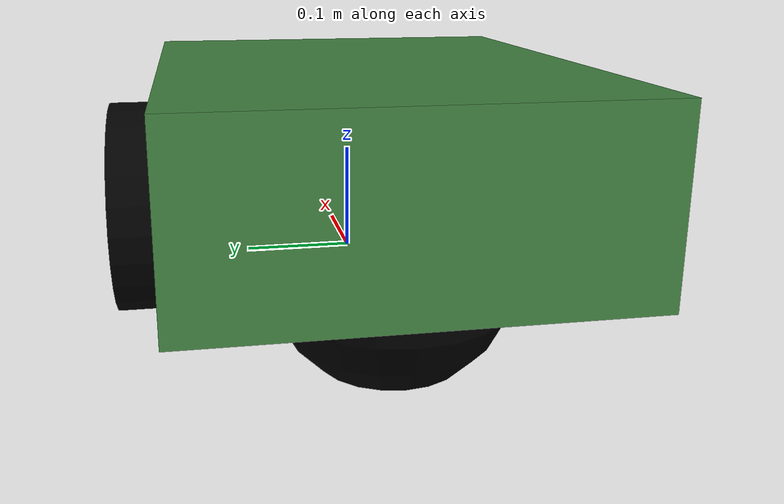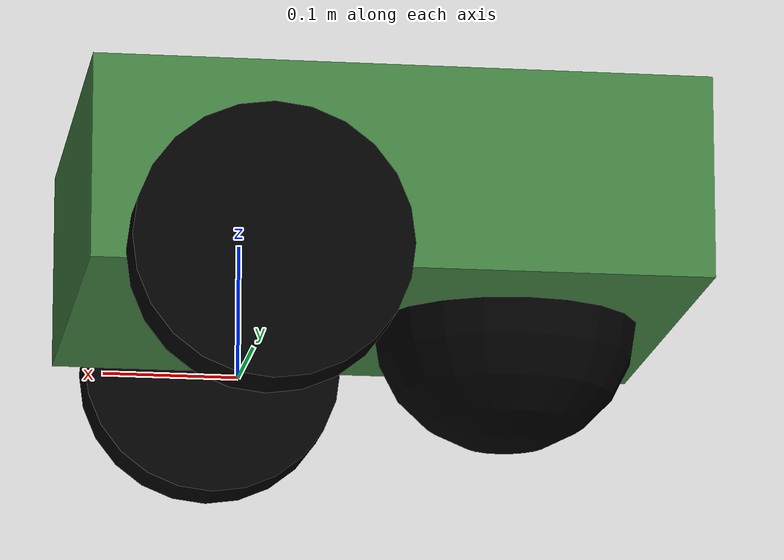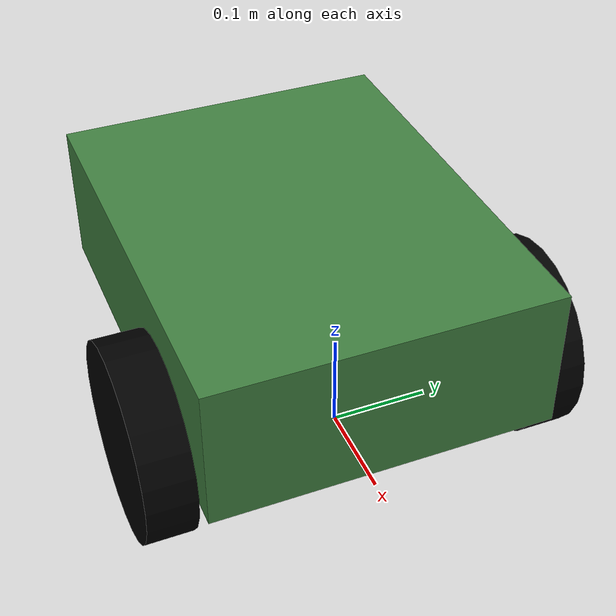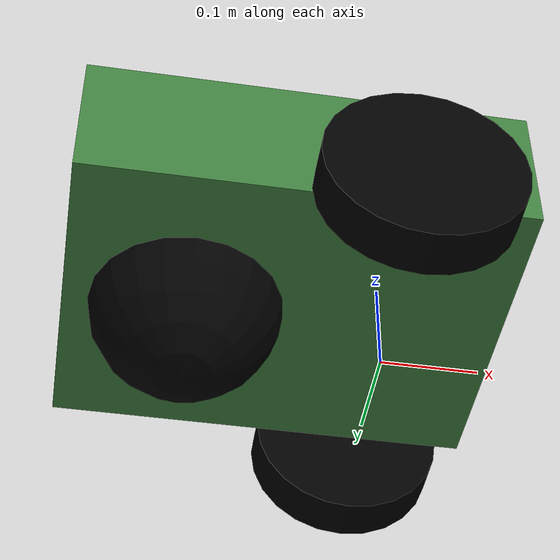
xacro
<?xml version="1.0"?>

<robot name="differential_drive_robot" xmlns:xacro="http://www.ros.org/wiki/xacro">

    <xacro:include filename="$(find myrobot_description)/urdf/include/inertial.xacro" />

    <!-- Robot Parameters -->
    <xacro:property name="body_length" value="0.45"/>
    <xacro:property name="body_width" value="0.35"/>
    <xacro:property name="body_height" value="0.15"/>
    <xacro:property name="body_offset_x" value="-0.1"/>
    <xacro:property name="body_offset_y" value="0.0"/>
    <xacro:property name="body_offset_z" value="0.02"/>
    <xacro:property name="body_density" value="7850.0"/> <!-- Steel -->
    <xacro:property name="body_mass" value="${body_density * body_length * body_height * body_width}"/>

    <xacro:property name="wheel_radius" value="0.1"/>
    <xacro:property name="wheel_width" value="0.05"/>
    <xacro:property name="wheel_separation" value="${body_width + wheel_width}"/>
    <xacro:property name="wheel_offset" value="${body_length/2 - wheel_radius}"/>
    <xacro:property name="wheel_density" value="900"/> <!-- Ruber -->
    <xacro:property name="wheel_mass" value="${wheel_density * pi * wheel_radius * wheel_radius * wheel_width}"/>

    <xacro:property name="caster_radius" value="0.1"/>
    <xacro:property name="caster_offset" value="-0.2"/>
    <xacro:property name="caster_density" value="0.1"/>
    <xacro:property name="caster_mass" value="${caster_density * 4.0/3.0 * pi * caster_radius * caster_radius * caster_radius}"/>
    <xacro:property name="caster_inertia_x" value="${2.0/5.0 * caster_mass * caster_radius * caster_radius}"/>
    <xacro:property name="caster_inertia_y" value="${2.0/5.0 * caster_mass * caster_radius * caster_radius}"/>
    <xacro:property name="caster_inertia_z" value="${2.0/5.0 * caster_mass * caster_radius * caster_radius}"/>

    <!-- Control Parameters -->
    <xacro:property name="max_linear_acceleration" value="10"/>

    <!-- Body Link -->
    <link name="base_link">
        <visual>
            <origin xyz="${body_offset_x} ${body_offset_y} ${body_offset_z}" rpy="0 0 0"/>
            <geometry>
                <box size="${body_length} ${body_width} ${body_height}"/>
            </geometry>
            <material name="body_material">
                <color rgba="0.25 0.5 0.25 1.0"/>
            </material>
        </visual>
        <collision>
            <origin xyz="${body_offset_x} ${body_offset_y} ${body_offset_z}" rpy="0 0 0"/>
            <geometry>
                <box size="${body_length} ${body_width} ${body_height}"/>
            </geometry>
        </collision>
        <xacro:box_inertial_with_origin  x="${body_length}" y="${body_width}" z="${body_height}" mass="${body_mass}">
            <origin xyz="${body_offset_x} ${body_offset_y} ${body_offset_z}" rpy="0 0 0" />
        </xacro:box_inertial_with_origin>
    </link>

    <!-- Left Wheel -->
    <link name="left_wheel_link">
        <visual>
            <origin xyz="0 0 0" rpy="${pi/2} 0 0"/>
            <geometry>
                <cylinder radius="${wheel_radius}" length="${wheel_width}"/>
            </geometry>
            <material name="wheel_material">
                <color rgba="0 0 0 1.0"/>
            </material>
        </visual>
        <collision>
            <origin xyz="0 0 0" rpy="${pi/2} 0 0"/>
            <geometry>
                <cylinder radius="${wheel_radius}" length="${wheel_width}"/>
            </geometry>
        </collision>
        <xacro:cylinder_inertial_with_origin radius="${wheel_radius}" length="${wheel_width}" mass="${wheel_mass}">
            <origin xyz="0 0 0" rpy="0 0 0" />
        </xacro:cylinder_inertial_with_origin>
    </link>

    <!-- Right Wheel -->
    <link name="right_wheel_link">
        <visual>
            <origin xyz="0 0 0" rpy="${pi/2} 0 0"/>
            <geometry>
                <cylinder radius="${wheel_radius}" length="${wheel_width}"/>
            </geometry>
            <material name="wheel_material">
                <color rgba="0 0 0 1.0"/>
            </material>
        </visual>
        <collision>
            <origin xyz="0 0 0" rpy="${pi/2} 0 0"/>
            <geometry>
                <cylinder radius="${wheel_radius}" length="${wheel_width}"/>
            </geometry>
        </collision>
        <xacro:cylinder_inertial_with_origin radius="${wheel_radius}" length="${wheel_width}" mass="${wheel_mass}">
            <origin xyz="0 0 0" rpy="${pi/2} 0 0" />
        </xacro:cylinder_inertial_with_origin>
    </link>

    <!-- Caster Wheel -->
    <link name="caster_link">
        <visual>
            <origin xyz="0 0 0" rpy="0 0 0"/>
            <geometry>
                <sphere radius="${caster_radius}"/>
            </geometry>
            <material name="caster_material">
                <color rgba="0 0 0 1.0"/>
            </material>
        </visual>
        <collision>
            <origin xyz="0 0 0" rpy="0 0 0"/>
            <geometry>
                <sphere radius="${caster_radius}"/>
            </geometry>
        </collision>
        <xacro:sphere_inertial_with_origin radius="${caster_radius}" mass="${caster_mass}">
            <origin xyz="0 0 0" rpy="0 0 0" />
        </xacro:sphere_inertial_with_origin>
    </link>

    <!--  Base footprint -->
    <link name="base_footprint"/>

    <!-- Base footprint joint -->
    <joint name="base_footprint_joint" type="fixed">
        <parent link="base_footprint"/>
        <child link="base_link"/>
        <origin xyz="0 0 ${wheel_radius}" rpy="0 0 0"/>
    </joint>

    <!-- Left wheel joint -->
    <joint name="left_wheel_joint" type="continuous">
        <origin xyz="0 ${wheel_separation/2} -${wheel_radius/2}" rpy="0 0 0"/>
        <parent link="base_link"/>
        <child link="left_wheel_link"/>
        <axis xyz="0 1 0"/>
        <limit effort="100" velocity="10.0"/>
    </joint>

    <!-- Right wheel joint -->
    <joint name="right_wheel_joint" type="continuous">
        <origin xyz="0 ${-wheel_separation/2} -${wheel_radius/2}" rpy="0 0 0"/>
        <parent link="base_link"/>
        <child link="right_wheel_link"/>
        <axis xyz="0 1 0"/>
        <limit effort="100" velocity="10.0"/>
    </joint>

    <!-- Caster joint -->
    <joint name="caster_joint" type="fixed">
        <origin xyz="${caster_offset} 0 -${caster_radius/2}" rpy="0 0 0"/>
        <parent link="base_link"/>
        <child link="caster_link"/>
    </joint>

    <!-- Gazebo Parameters -->
    <gazebo reference="base_link">
        <mu1>1.0</mu1>
        <mu2>1.0</mu2>
    </gazebo>

    <gazebo reference="right_wheel_link">
        <mu1>1.0</mu1>
        <mu2>1.0</mu2>
    </gazebo>

    <gazebo reference="left_wheel_link">
        <mu1>1.0</mu1>
        <mu2>1.0</mu2>
    </gazebo>

    <gazebo reference="caster_link">
        <mu1>0.000001</mu1>
        <mu2>0.000001</mu2>
    </gazebo>

    <!-- Gazebo Plugins -->
    <gazebo>
        <plugin filename="gz-sim-diff-drive-system" name="gz::sim::systems::DiffDrive">
            <right_joint>right_wheel_joint</right_joint>
            <left_joint>left_wheel_joint</left_joint>
            <wheel_separation>${wheel_separation}</wheel_separation>
            <wheel_radius>${wheel_radius}</wheel_radius>
            <max_linear_acceleration>${max_linear_acceleration}</max_linear_acceleration>
            <odom_publish_frequency>100</odom_publish_frequency>
            <topic>cmd_vel</topic>
            <odom_topic>odom</odom_topic>
            <tf_topic>tf</tf_topic>
            <frame_id>odom</frame_id>
            <child_frame_id>base_footprint</child_frame_id>
        </plugin>

        <plugin filename="gz-sim-joint-state-publisher-system" name="gz::sim::systems::JointStatePublisher">
            <topic>joint_states</topic>
            <joint_name>right_wheel_joint</joint_name>
            <joint_name>left_wheel_joint</joint_name>
        </plugin>
    </gazebo>

</robot>
